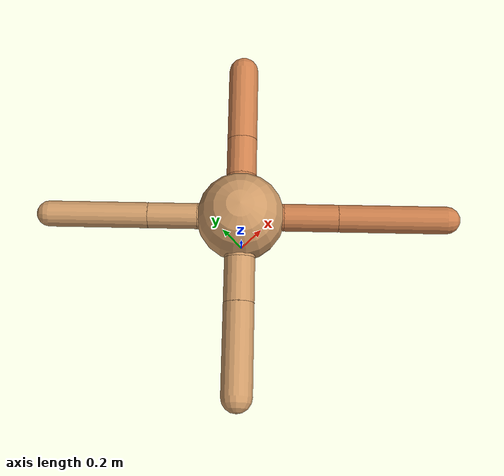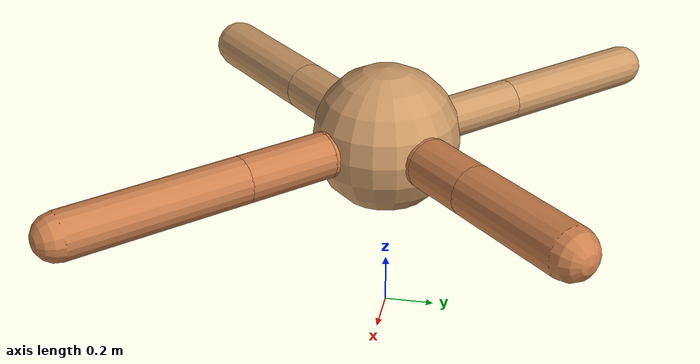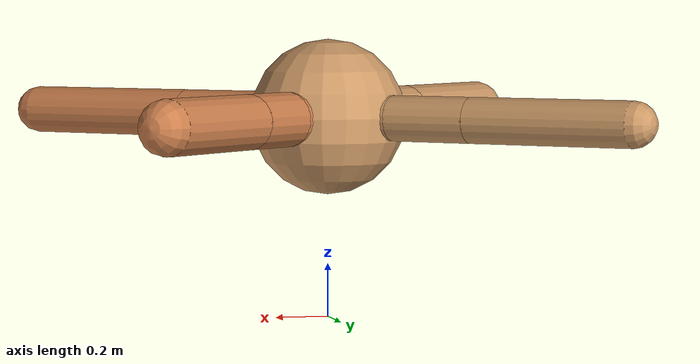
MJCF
<?xml version="1.0" ?>
<mujoco model="ant">

	<compiler angle="degree" coordinate="local" inertiafromgeom="true"/>

	<option integrator="RK4" timestep="0.01"/>

	<custom>

		<numeric data="0.0 0.0 0.55 1.0 0.0 0.0 0.0 0.0 1.0 0.0 -1.0 0.0 -1.0 0.0 1.0" name="init_qpos"/>

	</custom>

	<default>

		<joint armature="1" damping="1" limited="true"/>

		<geom conaffinity="0" condim="3" density="5.0" friction="1.5 0.1 0.1" margin="0.01" rgba="0.8 0.6 0.4 1"/>

	</default>

	<worldbody>

		<body name="torso" pos="0 0 0.75">

			<geom name="torso_geom" pos="0 0 0" size="0.2900192906678759" type="sphere"/>

			<!--joint armature="0" damping="0" limited="false" margin="0.01" name="root" pos="0 0 0" type="free"/-->

			<body name="front_left_leg" pos="0 0 0">

				<geom fromto="0 0 0 0.2 0.2 0" name="aux_1_geom" size="0.10014261758425363" type="capsule" rgba=".8 .5 .3 1"/>

				<body name="aux_1" pos="0.2 0.2 0">

					<joint axis="0 0 1" name="hip_1" pos="0.0 0.0 0.0" range="-40 40" type="hinge"/>

					<geom fromto="0 0 0 0.18184220814570484 0.18184220814570484 0" name="left_leg_geom" size="0.10014261758425363" type="capsule" rgba=".8 .5 .3 1"/>

					<body pos="0.18184220814570484 0.18184220814570484 0" name="front_left_foot">

						<joint axis="-1 1 0" name="ankle_1" pos="0.0 0.0 0.0" range="30 100" type="hinge"/>

						<geom fromto="0 0 0 0.3636844162914097 0.3636844162914097 0" name="left_ankle_geom" size="0.10014261758425363" type="capsule" rgba=".8 .5 .3 1"/>

					</body>

				</body>

			</body>

			<body name="front_right_leg" pos="0 0 0">

				<geom fromto="0 0 0 -0.2 0.2 0" name="aux_2_geom" size="0.08490724469722173" type="capsule"/>

				<body name="aux_2" pos="-0.2 0.2 0">

					<joint axis="0 0 1" name="hip_2" pos="0.0 0.0 0.0" range="-40 40" type="hinge"/>

					<geom fromto="0 0 0 -0.22796114734767073 0.22796114734767073 0" name="right_leg_geom" size="0.08490724469722173" type="capsule"/>

					<body pos="-0.22796114734767073 0.22796114734767073 0" name="front_right_foot">

						<joint axis="1 1 0" name="ankle_2" pos="0.0 0.0 0.0" range="-100 -30" type="hinge"/>

						<geom fromto="0 0 0 -0.45592229469534146 0.45592229469534146 0" name="right_ankle_geom" size="0.08490724469722173" type="capsule"/>

					</body>

				</body>

			</body>

			<body name="left_back_leg" pos="0 0 0">

				<geom fromto="0 0 0 -0.2 -0.2 0" name="aux_3_geom" size="0.10067441890642365" type="capsule"/>

				<body name="aux_3" pos="-0.2 -0.2 0">

					<joint axis="0 0 1" name="hip_3" pos="0.0 0.0 0.0" range="-40 40" type="hinge"/>

					<geom fromto="0 0 0 -0.20755240588277132 -0.20755240588277132 0" name="back_leg_geom" size="0.10067441890642365" type="capsule"/>

					<body pos="-0.20755240588277132 -0.20755240588277132 0" name="left_back_foot">

						<joint axis="-1 1 0" name="ankle_3" pos="0.0 0.0 0.0" range="-100 -30" type="hinge"/>

						<geom fromto="0 0 0 -0.41510481176554265 -0.41510481176554265 0" name="third_ankle_geom" size="0.10067441890642365" type="capsule"/>

					</body>

				</body>

			</body>

			<body name="right_back_leg" pos="0 0 0">

				<geom fromto="0 0 0 0.2 -0.2 0" name="aux_4_geom" size="0.09063316020965538" type="capsule" rgba=".8 .5 .3 1"/>

				<body name="aux_4" pos="0.2 -0.2 0">

					<joint axis="0 0 1" name="hip_4" pos="0.0 0.0 0.0" range="-40 40" type="hinge"/>

					<geom fromto="0 0 0 0.25047894706592805 -0.25047894706592805 0" name="rightback_leg_geom" size="0.09063316020965538" type="capsule" rgba=".8 .5 .3 1"/>

					<body pos="0.25047894706592805 -0.25047894706592805 0" name="right_back_foot">

						<joint axis="1 1 0" name="ankle_4" pos="0.0 0.0 0.0" range="30 100" type="hinge"/>

						<geom fromto="0 0 0 0.5009578941318561 -0.5009578941318561 0" name="fourth_ankle_geom" size="0.09063316020965538" type="capsule" rgba=".8 .5 .3 1"/>

					</body>

				</body>

			</body>

		</body>

	</worldbody>

	<actuator>

		<motor ctrllimited="true" ctrlrange="-1.0 1.0" joint="hip_4" gear="150"/>

		<motor ctrllimited="true" ctrlrange="-1.0 1.0" joint="ankle_4" gear="150"/>

		<motor ctrllimited="true" ctrlrange="-1.0 1.0" joint="hip_1" gear="150"/>

		<motor ctrllimited="true" ctrlrange="-1.0 1.0" joint="ankle_1" gear="150"/>

		<motor ctrllimited="true" ctrlrange="-1.0 1.0" joint="hip_2" gear="150"/>

		<motor ctrllimited="true" ctrlrange="-1.0 1.0" joint="ankle_2" gear="150"/>

		<motor ctrllimited="true" ctrlrange="-1.0 1.0" joint="hip_3" gear="150"/>

		<motor ctrllimited="true" ctrlrange="-1.0 1.0" joint="ankle_3" gear="150"/>

	</actuator>

</mujoco>
